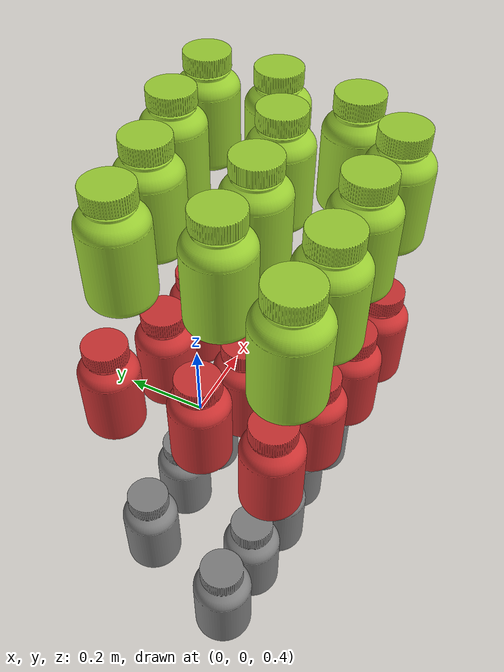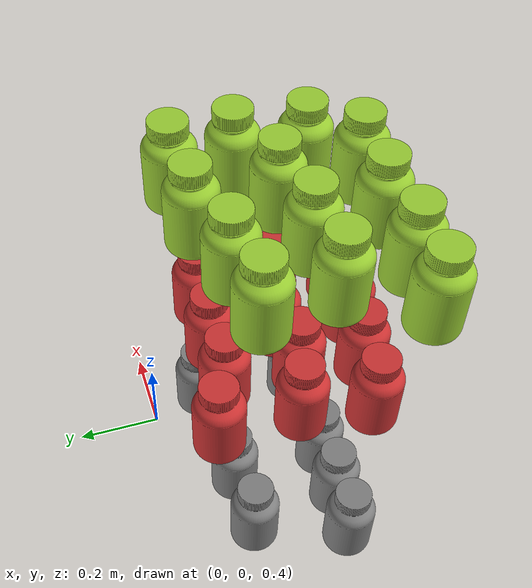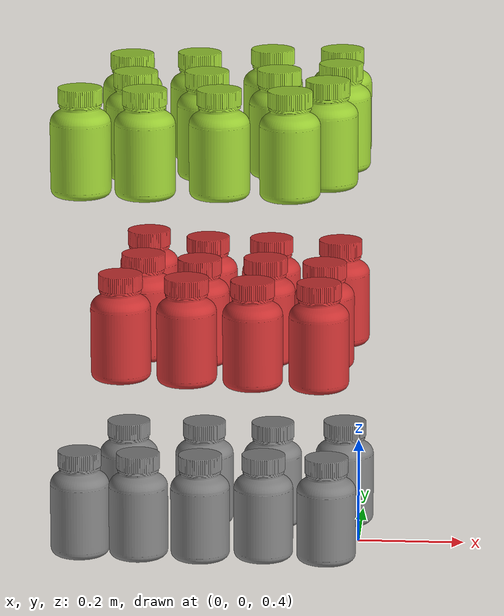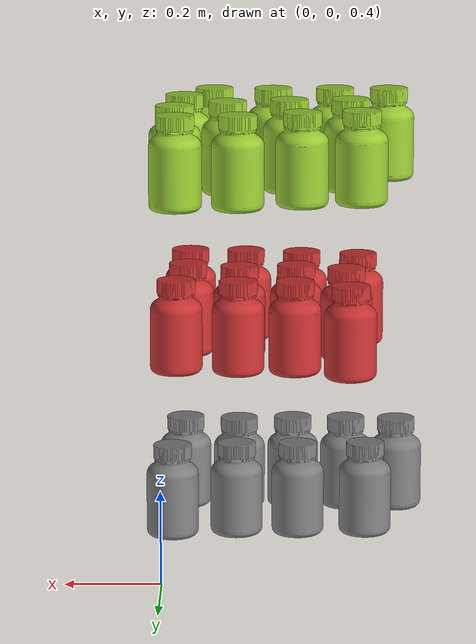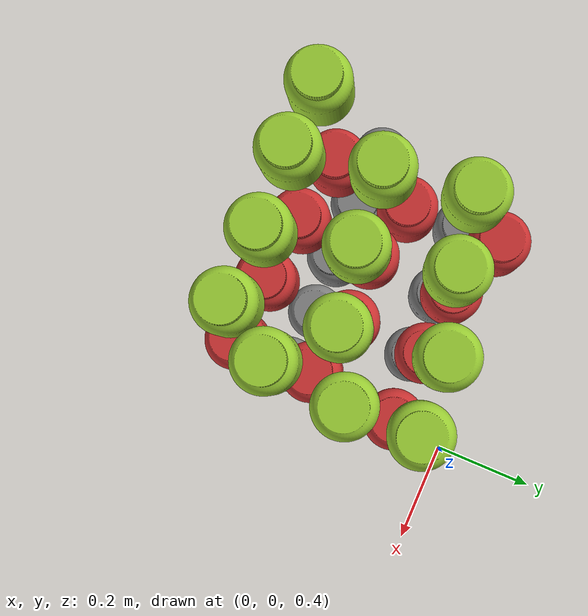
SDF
<sdf version="1.7">
 <world name="default">
  <model name="Medicine_Bottle">
   <static>0</static>
   <link name="medicine_bottle_link">
    <inertial>
     <mass>0.05</mass>
     <inertia><ixx>1e-05</ixx><ixy>0</ixy><ixz>0</ixz><iyy>1e-05</iyy><iyz>0</iyz><izz>1e-05</izz></inertia>
    </inertial>
    <visual name="visual">
     <geometry>
      <mesh><uri>model://Medicine_Bottle/meshes/Medicine_Bottle.stl</uri><scale>0.1 0.1 0.1</scale></mesh>
     </geometry>
     <material>
      <ambient>0.5 0.5 0.5 1</ambient>
      <diffuse>0.5 0.5 0.5 1</diffuse>
      <specular>0.1 0.1 0.1 1</specular>
     </material>
    </visual>
    <collision name="collision">
     <geometry>
      <mesh><uri>model://Medicine_Bottle/meshes/Medicine_Bottle.stl</uri><scale>0.1 0.1 0.1</scale></mesh>
     </geometry>
    </collision>
   </link>
   <pose>-0.021305 -0.111608 0.474978 -0.00016 -0.000412 -3.11408</pose>
  </model>
  <model name="Medicine_Bottle_clone">
   <static>0</static>
   <link name="medicine_bottle_link">
    <inertial>
     <mass>0.05</mass>
     <inertia><ixx>1e-05</ixx><ixy>0</ixy><ixz>0</ixz><iyy>1e-05</iyy><iyz>0</iyz><izz>1e-05</izz></inertia>
    </inertial>
    <visual name="visual">
     <geometry>
      <mesh><uri>model://Medicine_Bottle/meshes/Medicine_Bottle.stl</uri><scale>0.1 0.1 0.1</scale></mesh>
     </geometry>
     <material>
      <ambient>0.5 0.5 0.5 1</ambient>
      <diffuse>0.5 0.5 0.5 1</diffuse>
      <specular>0.1 0.1 0.1 1</specular>
     </material>
    </visual>
    <collision name="collision">
     <geometry>
      <mesh><uri>model://Medicine_Bottle/meshes/Medicine_Bottle.stl</uri><scale>0.1 0.1 0.1</scale></mesh>
     </geometry>
    </collision>
   </link>
   <pose>-0.154694 -0.128691 0.474988 -0.00016 -0.000412 -3.13435</pose>
  </model>
  <model name="Medicine_Bottle_clone_clone">
   <static>0</static>
   <link name="medicine_bottle_link">
    <inertial>
     <mass>0.05</mass>
     <inertia><ixx>1e-05</ixx><ixy>0</ixy><ixz>0</ixz><iyy>1e-05</iyy><iyz>0</iyz><izz>1e-05</izz></inertia>
    </inertial>
    <visual name="visual">
     <geometry>
      <mesh><uri>model://Medicine_Bottle/meshes/Medicine_Bottle.stl</uri><scale>0.1 0.1 0.1</scale></mesh>
     </geometry>
     <material>
      <ambient>0.5 0.5 0.5 1</ambient>
      <diffuse>0.5 0.5 0.5 1</diffuse>
      <specular>0.1 0.1 0.1 1</specular>
     </material>
    </visual>
    <collision name="collision">
     <geometry>
      <mesh><uri>model://Medicine_Bottle/meshes/Medicine_Bottle.stl</uri><scale>0.1 0.1 0.1</scale></mesh>
     </geometry>
    </collision>
   </link>
   <pose>-0.282684 -0.12955 0.474988 -0.00016 -0.000412 -3.11268</pose>
  </model>
  <model name="Medicine_Bottle_clone_clone_0">
   <static>0</static>
   <link name="medicine_bottle_link">
    <inertial>
     <mass>0.05</mass>
     <inertia><ixx>1e-05</ixx><ixy>0</ixy><ixz>0</ixz><iyy>1e-05</iyy><iyz>0</iyz><izz>1e-05</izz></inertia>
    </inertial>
    <visual name="visual">
     <geometry>
      <mesh><uri>model://Medicine_Bottle/meshes/Medicine_Bottle.stl</uri><scale>0.1 0.1 0.1</scale></mesh>
     </geometry>
     <material>
      <ambient>0.5 0.5 0.5 1</ambient>
      <diffuse>0.5 0.5 0.5 1</diffuse>
      <specular>0.1 0.1 0.1 1</specular>
     </material>
    </visual>
    <collision name="collision">
     <geometry>
      <mesh><uri>model://Medicine_Bottle/meshes/Medicine_Bottle.stl</uri><scale>0.1 0.1 0.1</scale></mesh>
     </geometry>
    </collision>
   </link>
   <pose>-0.423724 -0.134793 0.474978 -0.00016 -0.000412 -3.11249</pose>
  </model>
  <model name="Medicine_Bottle_clone_clone_3">
   <static>0</static>
   <link name="medicine_bottle_link">
    <inertial>
     <mass>0.05</mass>
     <inertia><ixx>1e-05</ixx><ixy>0</ixy><ixz>0</ixz><iyy>1e-05</iyy><iyz>0</iyz><izz>1e-05</izz></inertia>
    </inertial>
    <visual name="visual">
     <geometry>
      <mesh><uri>model://Medicine_Bottle/meshes/Medicine_Bottle.stl</uri><scale>0.1 0.1 0.1</scale></mesh>
     </geometry>
     <material>
      <ambient>0.5 0.5 0.5 1</ambient>
      <diffuse>0.5 0.5 0.5 1</diffuse>
      <specular>0.1 0.1 0.1 1</specular>
     </material>
    </visual>
    <collision name="collision">
     <geometry>
      <mesh><uri>model://Medicine_Bottle/meshes/Medicine_Bottle.stl</uri><scale>0.1 0.1 0.1</scale></mesh>
     </geometry>
    </collision>
   </link>
   <pose>-0.042868 -0.345663 0.474988 -0.00016 -0.000412 -3.11242</pose>
  </model>
  <model name="Medicine_Bottle_clone_clone_2_clone">
   <static>0</static>
   <link name="medicine_bottle_link">
    <inertial>
     <mass>0.05</mass>
     <inertia><ixx>1e-05</ixx><ixy>0</ixy><ixz>0</ixz><iyy>1e-05</iyy><iyz>0</iyz><izz>1e-05</izz></inertia>
    </inertial>
    <visual name="visual">
     <geometry>
      <mesh><uri>model://Medicine_Bottle/meshes/Medicine_Bottle.stl</uri><scale>0.1 0.1 0.1</scale></mesh>
     </geometry>
     <material>
      <ambient>0.5 0.5 0.5 1</ambient>
      <diffuse>0.5 0.5 0.5 1</diffuse>
      <specular>0.1 0.1 0.1 1</specular>
     </material>
    </visual>
    <collision name="collision">
     <geometry>
      <mesh><uri>model://Medicine_Bottle/meshes/Medicine_Bottle.stl</uri><scale>0.1 0.1 0.1</scale></mesh>
     </geometry>
    </collision>
   </link>
   <pose>-0.1584 -0.335335 0.474978 -0.00016 -0.000412 -3.11812</pose>
  </model>
  <model name="Medicine_Bottle_clone_clone_2_clone_0">
   <static>0</static>
   <link name="medicine_bottle_link">
    <inertial>
     <mass>0.05</mass>
     <inertia><ixx>1e-05</ixx><ixy>0</ixy><ixz>0</ixz><iyy>1e-05</iyy><iyz>0</iyz><izz>1e-05</izz></inertia>
    </inertial>
    <visual name="visual">
     <geometry>
      <mesh><uri>model://Medicine_Bottle/meshes/Medicine_Bottle.stl</uri><scale>0.1 0.1 0.1</scale></mesh>
     </geometry>
     <material>
      <ambient>0.5 0.5 0.5 1</ambient>
      <diffuse>0.5 0.5 0.5 1</diffuse>
      <specular>0.1 0.1 0.1 1</specular>
     </material>
    </visual>
    <collision name="collision">
     <geometry>
      <mesh><uri>model://Medicine_Bottle/meshes/Medicine_Bottle.stl</uri><scale>0.1 0.1 0.1</scale></mesh>
     </geometry>
    </collision>
   </link>
   <pose>-0.27351 -0.343876 0.474988 -0.00016 -0.000412 -3.13733</pose>
  </model>
  <model name="Medicine_Bottle_clone_clone_2_clone_1">
   <static>0</static>
   <link name="medicine_bottle_link">
    <inertial>
     <mass>0.05</mass>
     <inertia><ixx>1e-05</ixx><ixy>0</ixy><ixz>0</ixz><iyy>1e-05</iyy><iyz>0</iyz><izz>1e-05</izz></inertia>
    </inertial>
    <visual name="visual">
     <geometry>
      <mesh><uri>model://Medicine_Bottle/meshes/Medicine_Bottle.stl</uri><scale>0.1 0.1 0.1</scale></mesh>
     </geometry>
     <material>
      <ambient>0.5 0.5 0.5 1</ambient>
      <diffuse>0.5 0.5 0.5 1</diffuse>
      <specular>0.1 0.1 0.1 1</specular>
     </material>
    </visual>
    <collision name="collision">
     <geometry>
      <mesh><uri>model://Medicine_Bottle/meshes/Medicine_Bottle.stl</uri><scale>0.1 0.1 0.1</scale></mesh>
     </geometry>
    </collision>
   </link>
   <pose>-0.387059 -0.340507 0.474988 -0.000157 -0.000458 3.01582</pose>
  </model>
  <model name="Medicine_Bottle_clone_clone_2_clone_2">
   <static>0</static>
   <link name="medicine_bottle_link">
    <inertial>
     <mass>0.05</mass>
     <inertia><ixx>1e-05</ixx><ixy>0</ixy><ixz>0</ixz><iyy>1e-05</iyy><iyz>0</iyz><izz>1e-05</izz></inertia>
    </inertial>
    <visual name="visual">
     <geometry>
      <mesh><uri>model://Medicine_Bottle/meshes/Medicine_Bottle.stl</uri><scale>0.1 0.1 0.1</scale></mesh>
     </geometry>
     <material>
      <ambient>0.5 0.5 0.5 1</ambient>
      <diffuse>0.5 0.5 0.5 1</diffuse>
      <specular>0.1 0.1 0.1 1</specular>
     </material>
    </visual>
    <collision name="collision">
     <geometry>
      <mesh><uri>model://Medicine_Bottle/meshes/Medicine_Bottle.stl</uri><scale>0.1 0.1 0.1</scale></mesh>
     </geometry>
    </collision>
   </link>
   <pose>-0.495091 -0.334484 0.474978 -0.000132 -0.000304 -2.94442</pose>
  </model>
  <model name="Medicine_Bottle_0">
   <static>0</static>
   <link name="medicine_bottle_link">
    <inertial>
     <mass>0.05</mass>
     <inertia><ixx>1e-05</ixx><ixy>0</ixy><ixz>0</ixz><iyy>1e-05</iyy><iyz>0</iyz><izz>1e-05</izz></inertia>
    </inertial>
    <visual name="visual">
     <geometry>
      <mesh><uri>model://Medicine_Bottle/meshes/Medicine_Bottle.stl</uri><scale>0.1 0.1 0.1</scale></mesh>
     </geometry>
     <material>
      <ambient>0.4 0.1 0.1 1</ambient>
      <diffuse>0.8 0.2 0.2 1</diffuse>
      <specular>0.2 0.1 0.1 1</specular>
     </material>
    </visual>
    <collision name="collision">
     <geometry>
      <mesh><uri>model://Medicine_Bottle/meshes/Medicine_Bottle.stl</uri><scale>0.1 0.1 0.1</scale></mesh>
     </geometry>
    </collision>
   </link>
   <pose>-0.030014 -0.116842 0.824988 -0.00016 -0.000412 -0.000384</pose>
  </model>
  <model name="Medicine_Bottle_0_clone">
   <static>0</static>
   <link name="medicine_bottle_link">
    <inertial>
     <mass>0.05</mass>
     <inertia><ixx>1e-05</ixx><ixy>0</ixy><ixz>0</ixz><iyy>1e-05</iyy><iyz>0</iyz><izz>1e-05</izz></inertia>
    </inertial>
    <visual name="visual">
     <geometry>
      <mesh><uri>model://Medicine_Bottle/meshes/Medicine_Bottle.stl</uri><scale>0.1 0.1 0.1</scale></mesh>
     </geometry>
     <material>
      <ambient>0.4 0.1 0.1 1</ambient>
      <diffuse>0.8 0.2 0.2 1</diffuse>
      <specular>0.2 0.1 0.1 1</specular>
     </material>
    </visual>
    <collision name="collision">
     <geometry>
      <mesh><uri>model://Medicine_Bottle/meshes/Medicine_Bottle.stl</uri><scale>0.1 0.1 0.1</scale></mesh>
     </geometry>
    </collision>
   </link>
   <pose>-0.158171 -0.110383 0.824988 -0.00016 -0.000412 -0.002833</pose>
  </model>
  <model name="Medicine_Bottle_0_clone_0">
   <static>0</static>
   <link name="medicine_bottle_link">
    <inertial>
     <mass>0.05</mass>
     <inertia><ixx>1e-05</ixx><ixy>0</ixy><ixz>0</ixz><iyy>1e-05</iyy><iyz>0</iyz><izz>1e-05</izz></inertia>
    </inertial>
    <visual name="visual">
     <geometry>
      <mesh><uri>model://Medicine_Bottle/meshes/Medicine_Bottle.stl</uri><scale>0.1 0.1 0.1</scale></mesh>
     </geometry>
     <material>
      <ambient>0.4 0.1 0.1 1</ambient>
      <diffuse>0.8 0.2 0.2 1</diffuse>
      <specular>0.2 0.1 0.1 1</specular>
     </material>
    </visual>
    <collision name="collision">
     <geometry>
      <mesh><uri>model://Medicine_Bottle/meshes/Medicine_Bottle.stl</uri><scale>0.1 0.1 0.1</scale></mesh>
     </geometry>
    </collision>
   </link>
   <pose>-0.291166 -0.405783 0.824987 -0.00016 -0.000412 -0.000384</pose>
  </model>
  <model name="Medicine_Bottle_0_clone_1">
   <static>0</static>
   <link name="medicine_bottle_link">
    <inertial>
     <mass>0.05</mass>
     <inertia><ixx>1e-05</ixx><ixy>0</ixy><ixz>0</ixz><iyy>1e-05</iyy><iyz>0</iyz><izz>1e-05</izz></inertia>
    </inertial>
    <visual name="visual">
     <geometry>
      <mesh><uri>model://Medicine_Bottle/meshes/Medicine_Bottle.stl</uri><scale>0.1 0.1 0.1</scale></mesh>
     </geometry>
     <material>
      <ambient>0.4 0.1 0.1 1</ambient>
      <diffuse>0.8 0.2 0.2 1</diffuse>
      <specular>0.2 0.1 0.1 1</specular>
     </material>
    </visual>
    <collision name="collision">
     <geometry>
      <mesh><uri>model://Medicine_Bottle/meshes/Medicine_Bottle.stl</uri><scale>0.1 0.1 0.1</scale></mesh>
     </geometry>
    </collision>
   </link>
   <pose>-0.411783 -0.386617 0.824988 -0.00016 -0.000412 -0.000384</pose>
  </model>
  <model name="Medicine_Bottle_0_clone_2">
   <static>0</static>
   <link name="medicine_bottle_link">
    <inertial>
     <mass>0.05</mass>
     <inertia><ixx>1e-05</ixx><ixy>0</ixy><ixz>0</ixz><iyy>1e-05</iyy><iyz>0</iyz><izz>1e-05</izz></inertia>
    </inertial>
    <visual name="visual">
     <geometry>
      <mesh><uri>model://Medicine_Bottle/meshes/Medicine_Bottle.stl</uri><scale>0.1 0.1 0.1</scale></mesh>
     </geometry>
     <material>
      <ambient>0.4 0.1 0.1 1</ambient>
      <diffuse>0.8 0.2 0.2 1</diffuse>
      <specular>0.2 0.1 0.1 1</specular>
     </material>
    </visual>
    <collision name="collision">
     <geometry>
      <mesh><uri>model://Medicine_Bottle/meshes/Medicine_Bottle.stl</uri><scale>0.1 0.1 0.1</scale></mesh>
     </geometry>
    </collision>
   </link>
   <pose>-0.159362 -0.25593 0.824978 -0.00016 -0.000412 0.003182</pose>
  </model>
  <model name="Medicine_Bottle_0_clone_3">
   <static>0</static>
   <link name="medicine_bottle_link">
    <inertial>
     <mass>0.05</mass>
     <inertia><ixx>1e-05</ixx><ixy>0</ixy><ixz>0</ixz><iyy>1e-05</iyy><iyz>0</iyz><izz>1e-05</izz></inertia>
    </inertial>
    <visual name="visual">
     <geometry>
      <mesh><uri>model://Medicine_Bottle/meshes/Medicine_Bottle.stl</uri><scale>0.1 0.1 0.1</scale></mesh>
     </geometry>
     <material>
      <ambient>0.4 0.1 0.1 1</ambient>
      <diffuse>0.8 0.2 0.2 1</diffuse>
      <specular>0.2 0.1 0.1 1</specular>
     </material>
    </visual>
    <collision name="collision">
     <geometry>
      <mesh><uri>model://Medicine_Bottle/meshes/Medicine_Bottle.stl</uri><scale>0.1 0.1 0.1</scale></mesh>
     </geometry>
    </collision>
   </link>
   <pose>-0.050368 -0.282769 0.824988 -0.00016 -0.000412 -0.000384</pose>
  </model>
  <model name="Medicine_Bottle_0_clone_4">
   <static>0</static>
   <link name="medicine_bottle_link">
    <inertial>
     <mass>0.05</mass>
     <inertia><ixx>1e-05</ixx><ixy>0</ixy><ixz>0</ixz><iyy>1e-05</iyy><iyz>0</iyz><izz>1e-05</izz></inertia>
    </inertial>
    <visual name="visual">
     <geometry>
      <mesh><uri>model://Medicine_Bottle/meshes/Medicine_Bottle.stl</uri><scale>0.1 0.1 0.1</scale></mesh>
     </geometry>
     <material>
      <ambient>0.4 0.1 0.1 1</ambient>
      <diffuse>0.8 0.2 0.2 1</diffuse>
      <specular>0.2 0.1 0.1 1</specular>
     </material>
    </visual>
    <collision name="collision">
     <geometry>
      <mesh><uri>model://Medicine_Bottle/meshes/Medicine_Bottle.stl</uri><scale>0.1 0.1 0.1</scale></mesh>
     </geometry>
    </collision>
   </link>
   <pose>-0.278604 -0.268851 0.824988 -0.00016 -0.000412 -0.000699</pose>
  </model>
  <model name="Medicine_Bottle_0_clone_5">
   <static>0</static>
   <link name="medicine_bottle_link">
    <inertial>
     <mass>0.05</mass>
     <inertia><ixx>1e-05</ixx><ixy>0</ixy><ixz>0</ixz><iyy>1e-05</iyy><iyz>0</iyz><izz>1e-05</izz></inertia>
    </inertial>
    <visual name="visual">
     <geometry>
      <mesh><uri>model://Medicine_Bottle/meshes/Medicine_Bottle.stl</uri><scale>0.1 0.1 0.1</scale></mesh>
     </geometry>
     <material>
      <ambient>0.4 0.1 0.1 1</ambient>
      <diffuse>0.8 0.2 0.2 1</diffuse>
      <specular>0.2 0.1 0.1 1</specular>
     </material>
    </visual>
    <collision name="collision">
     <geometry>
      <mesh><uri>model://Medicine_Bottle/meshes/Medicine_Bottle.stl</uri><scale>0.1 0.1 0.1</scale></mesh>
     </geometry>
    </collision>
   </link>
   <pose>-0.275642 -0.108979 0.824988 -0.00016 -0.000412 -0.000384</pose>
  </model>
  <model name="Medicine_Bottle_0_clone_6">
   <static>0</static>
   <link name="medicine_bottle_link">
    <inertial>
     <mass>0.05</mass>
     <inertia><ixx>1e-05</ixx><ixy>0</ixy><ixz>0</ixz><iyy>1e-05</iyy><iyz>0</iyz><izz>1e-05</izz></inertia>
    </inertial>
    <visual name="visual">
     <geometry>
      <mesh><uri>model://Medicine_Bottle/meshes/Medicine_Bottle.stl</uri><scale>0.1 0.1 0.1</scale></mesh>
     </geometry>
     <material>
      <ambient>0.4 0.1 0.1 1</ambient>
      <diffuse>0.8 0.2 0.2 1</diffuse>
      <specular>0.2 0.1 0.1 1</specular>
     </material>
    </visual>
    <collision name="collision">
     <geometry>
      <mesh><uri>model://Medicine_Bottle/meshes/Medicine_Bottle.stl</uri><scale>0.1 0.1 0.1</scale></mesh>
     </geometry>
    </collision>
   </link>
   <pose>-0.383758 -0.239182 0.824988 -0.00016 -0.000412 -0.040425</pose>
  </model>
  <model name="Medicine_Bottle_0_clone_7">
   <static>0</static>
   <link name="medicine_bottle_link">
    <inertial>
     <mass>0.05</mass>
     <inertia><ixx>1e-05</ixx><ixy>0</ixy><ixz>0</ixz><iyy>1e-05</iyy><iyz>0</iyz><izz>1e-05</izz></inertia>
    </inertial>
    <visual name="visual">
     <geometry>
      <mesh><uri>model://Medicine_Bottle/meshes/Medicine_Bottle.stl</uri><scale>0.1 0.1 0.1</scale></mesh>
     </geometry>
     <material>
      <ambient>0.4 0.1 0.1 1</ambient>
      <diffuse>0.8 0.2 0.2 1</diffuse>
      <specular>0.2 0.1 0.1 1</specular>
     </material>
    </visual>
    <collision name="collision">
     <geometry>
      <mesh><uri>model://Medicine_Bottle/meshes/Medicine_Bottle.stl</uri><scale>0.1 0.1 0.1</scale></mesh>
     </geometry>
    </collision>
   </link>
   <pose>-0.389292 -0.064966 0.824988 -0.00016 -0.000412 -0.240456</pose>
  </model>
  <model name="Medicine_Bottle_0_clone_8">
   <static>0</static>
   <link name="medicine_bottle_link">
    <inertial>
     <mass>0.05</mass>
     <inertia><ixx>1e-05</ixx><ixy>0</ixy><ixz>0</ixz><iyy>1e-05</iyy><iyz>0</iyz><izz>1e-05</izz></inertia>
    </inertial>
    <visual name="visual">
     <geometry>
      <mesh><uri>model://Medicine_Bottle/meshes/Medicine_Bottle.stl</uri><scale>0.1 0.1 0.1</scale></mesh>
     </geometry>
     <material>
      <ambient>0.4 0.1 0.1 1</ambient>
      <diffuse>0.8 0.2 0.2 1</diffuse>
      <specular>0.2 0.1 0.1 1</specular>
     </material>
    </visual>
    <collision name="collision">
     <geometry>
      <mesh><uri>model://Medicine_Bottle/meshes/Medicine_Bottle.stl</uri><scale>0.1 0.1 0.1</scale></mesh>
     </geometry>
    </collision>
   </link>
   <pose>-0.052274 -0.426727 0.824988 -0.00016 -0.000412 -0.000384</pose>
  </model>
  <model name="Medicine_Bottle_0_clone_9">
   <static>0</static>
   <link name="medicine_bottle_link">
    <inertial>
     <mass>0.05</mass>
     <inertia><ixx>1e-05</ixx><ixy>0</ixy><ixz>0</ixz><iyy>1e-05</iyy><iyz>0</iyz><izz>1e-05</izz></inertia>
    </inertial>
    <visual name="visual">
     <geometry>
      <mesh><uri>model://Medicine_Bottle/meshes/Medicine_Bottle.stl</uri><scale>0.1 0.1 0.1</scale></mesh>
     </geometry>
     <material>
      <ambient>0.4 0.1 0.1 1</ambient>
      <diffuse>0.8 0.2 0.2 1</diffuse>
      <specular>0.2 0.1 0.1 1</specular>
     </material>
    </visual>
    <collision name="collision">
     <geometry>
      <mesh><uri>model://Medicine_Bottle/meshes/Medicine_Bottle.stl</uri><scale>0.1 0.1 0.1</scale></mesh>
     </geometry>
    </collision>
   </link>
   <pose>-0.171443 -0.420345 0.824988 -0.00016 -0.000412 -0.000384</pose>
  </model>
  <model name="Medicine_Bottle_1">
   <static>0</static>
   <link name="medicine_bottle_link">
    <inertial>
     <mass>0.05</mass>
     <inertia><ixx>1e-05</ixx><ixy>0</ixy><ixz>0</ixz><iyy>1e-05</iyy><iyz>0</iyz><izz>1e-05</izz></inertia>
    </inertial>
    <visual name="visual">
     <geometry>
      <mesh><uri>model://Medicine_Bottle/meshes/Medicine_Bottle.stl</uri><scale>0.1 0.1 0.1</scale></mesh>
     </geometry>
     <material>
      <ambient>0.3 0.4 0.1 1</ambient>
      <diffuse>0.6 0.8 0.2 1</diffuse>
      <specular>0.2 0.3 0.1 1</specular>
     </material>
    </visual>
    <collision name="collision">
     <geometry>
      <mesh><uri>model://Medicine_Bottle/meshes/Medicine_Bottle.stl</uri><scale>0.1 0.1 0.1</scale></mesh>
     </geometry>
    </collision>
   </link>
   <pose>-0.030175 -0.072714 1.17499 -0.000163 -0.000421 0.10145</pose>
  </model>
  <model name="Medicine_Bottle_1_clone">
   <static>0</static>
   <link name="medicine_bottle_link">
    <inertial>
     <mass>0.05</mass>
     <inertia><ixx>1e-05</ixx><ixy>0</ixy><ixz>0</ixz><iyy>1e-05</iyy><iyz>0</iyz><izz>1e-05</izz></inertia>
    </inertial>
    <visual name="visual">
     <geometry>
      <mesh><uri>model://Medicine_Bottle/meshes/Medicine_Bottle.stl</uri><scale>0.1 0.1 0.1</scale></mesh>
     </geometry>
     <material>
      <ambient>0.3 0.4 0.1 1</ambient>
      <diffuse>0.6 0.8 0.2 1</diffuse>
      <specular>0.2 0.3 0.1 1</specular>
     </material>
    </visual>
    <collision name="collision">
     <geometry>
      <mesh><uri>model://Medicine_Bottle/meshes/Medicine_Bottle.stl</uri><scale>0.1 0.1 0.1</scale></mesh>
     </geometry>
    </collision>
   </link>
   <pose>-0.157544 -0.081647 1.17498 -0.000164 -0.000423 0.10145</pose>
  </model>
  <model name="Medicine_Bottle_1_clone_0">
   <static>0</static>
   <link name="medicine_bottle_link">
    <inertial>
     <mass>0.05</mass>
     <inertia><ixx>1e-05</ixx><ixy>0</ixy><ixz>0</ixz><iyy>1e-05</iyy><iyz>0</iyz><izz>1e-05</izz></inertia>
    </inertial>
    <visual name="visual">
     <geometry>
      <mesh><uri>model://Medicine_Bottle/meshes/Medicine_Bottle.stl</uri><scale>0.1 0.1 0.1</scale></mesh>
     </geometry>
     <material>
      <ambient>0.3 0.4 0.1 1</ambient>
      <diffuse>0.6 0.8 0.2 1</diffuse>
      <specular>0.2 0.3 0.1 1</specular>
     </material>
    </visual>
    <collision name="collision">
     <geometry>
      <mesh><uri>model://Medicine_Bottle/meshes/Medicine_Bottle.stl</uri><scale>0.1 0.1 0.1</scale></mesh>
     </geometry>
    </collision>
   </link>
   <pose>-0.288955 -0.118445 1.17499 -0.000167 -0.000432 0.10145</pose>
  </model>
  <model name="Medicine_Bottle_1_clone_1">
   <static>0</static>
   <link name="medicine_bottle_link">
    <inertial>
     <mass>0.05</mass>
     <inertia><ixx>1e-05</ixx><ixy>0</ixy><ixz>0</ixz><iyy>1e-05</iyy><iyz>0</iyz><izz>1e-05</izz></inertia>
    </inertial>
    <visual name="visual">
     <geometry>
      <mesh><uri>model://Medicine_Bottle/meshes/Medicine_Bottle.stl</uri><scale>0.1 0.1 0.1</scale></mesh>
     </geometry>
     <material>
      <ambient>0.3 0.4 0.1 1</ambient>
      <diffuse>0.6 0.8 0.2 1</diffuse>
      <specular>0.2 0.3 0.1 1</specular>
     </material>
    </visual>
    <collision name="collision">
     <geometry>
      <mesh><uri>model://Medicine_Bottle/meshes/Medicine_Bottle.stl</uri><scale>0.1 0.1 0.1</scale></mesh>
     </geometry>
    </collision>
   </link>
   <pose>-0.410741 -0.137073 1.17499 -0.000166 -0.000428 0.10145</pose>
  </model>
  <model name="Medicine_Bottle_1_clone_6">
   <static>0</static>
   <link name="medicine_bottle_link">
    <inertial>
     <mass>0.05</mass>
     <inertia><ixx>1e-05</ixx><ixy>0</ixy><ixz>0</ixz><iyy>1e-05</iyy><iyz>0</iyz><izz>1e-05</izz></inertia>
    </inertial>
    <visual name="visual">
     <geometry>
      <mesh><uri>model://Medicine_Bottle/meshes/Medicine_Bottle.stl</uri><scale>0.1 0.1 0.1</scale></mesh>
     </geometry>
     <material>
      <ambient>0.3 0.4 0.1 1</ambient>
      <diffuse>0.6 0.8 0.2 1</diffuse>
      <specular>0.2 0.3 0.1 1</specular>
     </material>
    </visual>
    <collision name="collision">
     <geometry>
      <mesh><uri>model://Medicine_Bottle/meshes/Medicine_Bottle.stl</uri><scale>0.1 0.1 0.1</scale></mesh>
     </geometry>
    </collision>
   </link>
   <pose>-0.025936 -0.199066 1.17498 -0.000275 -0.000167 0.193449</pose>
  </model>
  <model name="Medicine_Bottle_1_clone_7">
   <static>0</static>
   <link name="medicine_bottle_link">
    <inertial>
     <mass>0.05</mass>
     <inertia><ixx>1e-05</ixx><ixy>0</ixy><ixz>0</ixz><iyy>1e-05</iyy><iyz>0</iyz><izz>1e-05</izz></inertia>
    </inertial>
    <visual name="visual">
     <geometry>
      <mesh><uri>model://Medicine_Bottle/meshes/Medicine_Bottle.stl</uri><scale>0.1 0.1 0.1</scale></mesh>
     </geometry>
     <material>
      <ambient>0.3 0.4 0.1 1</ambient>
      <diffuse>0.6 0.8 0.2 1</diffuse>
      <specular>0.2 0.3 0.1 1</specular>
     </material>
    </visual>
    <collision name="collision">
     <geometry>
      <mesh><uri>model://Medicine_Bottle/meshes/Medicine_Bottle.stl</uri><scale>0.1 0.1 0.1</scale></mesh>
     </geometry>
    </collision>
   </link>
   <pose>-0.134524 -0.255555 1.17498 0.000727 -0.000319 -0.010941</pose>
  </model>
  <model name="Medicine_Bottle_1_clone_8">
   <static>0</static>
   <link name="medicine_bottle_link">
    <inertial>
     <mass>0.05</mass>
     <inertia><ixx>1e-05</ixx><ixy>0</ixy><ixz>0</ixz><iyy>1e-05</iyy><iyz>0</iyz><izz>1e-05</izz></inertia>
    </inertial>
    <visual name="visual">
     <geometry>
      <mesh><uri>model://Medicine_Bottle/meshes/Medicine_Bottle.stl</uri><scale>0.1 0.1 0.1</scale></mesh>
     </geometry>
     <material>
      <ambient>0.3 0.4 0.1 1</ambient>
      <diffuse>0.6 0.8 0.2 1</diffuse>
      <specular>0.2 0.3 0.1 1</specular>
     </material>
    </visual>
    <collision name="collision">
     <geometry>
      <mesh><uri>model://Medicine_Bottle/meshes/Medicine_Bottle.stl</uri><scale>0.1 0.1 0.1</scale></mesh>
     </geometry>
    </collision>
   </link>
   <pose>-0.262957 -0.278536 1.17499 -0.000165 -0.000425 0.10145</pose>
  </model>
  <model name="Medicine_Bottle_1_clone_9">
   <static>0</static>
   <link name="medicine_bottle_link">
    <inertial>
     <mass>0.05</mass>
     <inertia><ixx>1e-05</ixx><ixy>0</ixy><ixz>0</ixz><iyy>1e-05</iyy><iyz>0</iyz><izz>1e-05</izz></inertia>
    </inertial>
    <visual name="visual">
     <geometry>
      <mesh><uri>model://Medicine_Bottle/meshes/Medicine_Bottle.stl</uri><scale>0.1 0.1 0.1</scale></mesh>
     </geometry>
     <material>
      <ambient>0.3 0.4 0.1 1</ambient>
      <diffuse>0.6 0.8 0.2 1</diffuse>
      <specular>0.2 0.3 0.1 1</specular>
     </material>
    </visual>
    <collision name="collision">
     <geometry>
      <mesh><uri>model://Medicine_Bottle/meshes/Medicine_Bottle.stl</uri><scale>0.1 0.1 0.1</scale></mesh>
     </geometry>
    </collision>
   </link>
   <pose>-0.390547 -0.287753 1.17499 -0.00016 -0.000411 0.10145</pose>
  </model>
  <model name="Medicine_Bottle_1_clone_14">
   <static>0</static>
   <link name="medicine_bottle_link">
    <inertial>
     <mass>0.05</mass>
     <inertia><ixx>1e-05</ixx><ixy>0</ixy><ixz>0</ixz><iyy>1e-05</iyy><iyz>0</iyz><izz>1e-05</izz></inertia>
    </inertial>
    <visual name="visual">
     <geometry>
      <mesh><uri>model://Medicine_Bottle/meshes/Medicine_Bottle.stl</uri><scale>0.1 0.1 0.1</scale></mesh>
     </geometry>
     <material>
      <ambient>0.3 0.4 0.1 1</ambient>
      <diffuse>0.6 0.8 0.2 1</diffuse>
      <specular>0.2 0.3 0.1 1</specular>
     </material>
    </visual>
    <collision name="collision">
     <geometry>
      <mesh><uri>model://Medicine_Bottle/meshes/Medicine_Bottle.stl</uri><scale>0.1 0.1 0.1</scale></mesh>
     </geometry>
    </collision>
   </link>
   <pose>-0.042372 -0.340897 1.17499 -0.000167 -0.000432 0.10145</pose>
  </model>
  <model name="Medicine_Bottle_1_clone_19">
   <static>0</static>
   <link name="medicine_bottle_link">
    <inertial>
     <mass>0.05</mass>
     <inertia><ixx>1e-05</ixx><ixy>0</ixy><ixz>0</ixz><iyy>1e-05</iyy><iyz>0</iyz><izz>1e-05</izz></inertia>
    </inertial>
    <visual name="visual">
     <geometry>
      <mesh><uri>model://Medicine_Bottle/meshes/Medicine_Bottle.stl</uri><scale>0.1 0.1 0.1</scale></mesh>
     </geometry>
     <material>
      <ambient>0.3 0.4 0.1 1</ambient>
      <diffuse>0.6 0.8 0.2 1</diffuse>
      <specular>0.2 0.3 0.1 1</specular>
     </material>
    </visual>
    <collision name="collision">
     <geometry>
      <mesh><uri>model://Medicine_Bottle/meshes/Medicine_Bottle.stl</uri><scale>0.1 0.1 0.1</scale></mesh>
     </geometry>
    </collision>
   </link>
   <pose>-0.475506 -0.431684 1.17499 -0.000165 -0.000426 0.10145</pose>
  </model>
  <model name="Medicine_Bottle_1_clone_20">
   <static>0</static>
   <link name="medicine_bottle_link">
    <inertial>
     <mass>0.05</mass>
     <inertia><ixx>1e-05</ixx><ixy>0</ixy><ixz>0</ixz><iyy>1e-05</iyy><iyz>0</iyz><izz>1e-05</izz></inertia>
    </inertial>
    <visual name="visual">
     <geometry>
      <mesh><uri>model://Medicine_Bottle/meshes/Medicine_Bottle.stl</uri><scale>0.1 0.1 0.1</scale></mesh>
     </geometry>
     <material>
      <ambient>0.3 0.4 0.1 1</ambient>
      <diffuse>0.6 0.8 0.2 1</diffuse>
      <specular>0.2 0.3 0.1 1</specular>
     </material>
    </visual>
    <collision name="collision">
     <geometry>
      <mesh><uri>model://Medicine_Bottle/meshes/Medicine_Bottle.stl</uri><scale>0.1 0.1 0.1</scale></mesh>
     </geometry>
    </collision>
   </link>
   <pose>-0.360952 -0.434568 1.17499 -0.000166 -0.000427 0.10145</pose>
  </model>
  <model name="Medicine_Bottle_1_clone_21">
   <static>0</static>
   <link name="medicine_bottle_link">
    <inertial>
     <mass>0.05</mass>
     <inertia><ixx>1e-05</ixx><ixy>0</ixy><ixz>0</ixz><iyy>1e-05</iyy><iyz>0</iyz><izz>1e-05</izz></inertia>
    </inertial>
    <visual name="visual">
     <geometry>
      <mesh><uri>model://Medicine_Bottle/meshes/Medicine_Bottle.stl</uri><scale>0.1 0.1 0.1</scale></mesh>
     </geometry>
     <material>
      <ambient>0.3 0.4 0.1 1</ambient>
      <diffuse>0.6 0.8 0.2 1</diffuse>
      <specular>0.2 0.3 0.1 1</specular>
     </material>
    </visual>
    <collision name="collision">
     <geometry>
      <mesh><uri>model://Medicine_Bottle/meshes/Medicine_Bottle.stl</uri><scale>0.1 0.1 0.1</scale></mesh>
     </geometry>
    </collision>
   </link>
   <pose>-0.229396 -0.428032 1.17499 -0.000164 -0.000423 0.10145</pose>
  </model>
  <model name="Medicine_Bottle_1_clone_22">
   <static>0</static>
   <link name="medicine_bottle_link">
    <inertial>
     <mass>0.05</mass>
     <inertia><ixx>1e-05</ixx><ixy>0</ixy><ixz>0</ixz><iyy>1e-05</iyy><iyz>0</iyz><izz>1e-05</izz></inertia>
    </inertial>
    <visual name="visual">
     <geometry>
      <mesh><uri>model://Medicine_Bottle/meshes/Medicine_Bottle.stl</uri><scale>0.1 0.1 0.1</scale></mesh>
     </geometry>
     <material>
      <ambient>0.3 0.4 0.1 1</ambient>
      <diffuse>0.6 0.8 0.2 1</diffuse>
      <specular>0.2 0.3 0.1 1</specular>
     </material>
    </visual>
    <collision name="collision">
     <geometry>
      <mesh><uri>model://Medicine_Bottle/meshes/Medicine_Bottle.stl</uri><scale>0.1 0.1 0.1</scale></mesh>
     </geometry>
    </collision>
   </link>
   <pose>-0.104101 -0.433199 1.17499 -0.00016 -0.000412 0.10145</pose>
  </model>
 </world>
</sdf>
